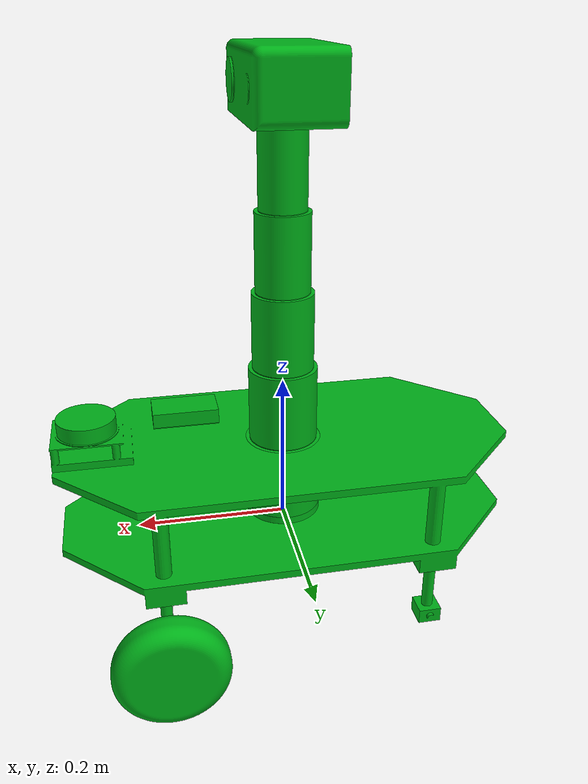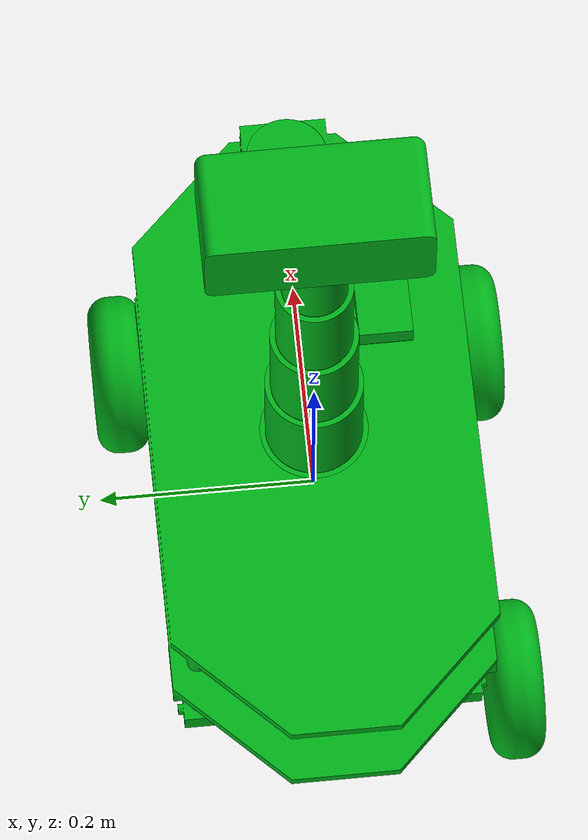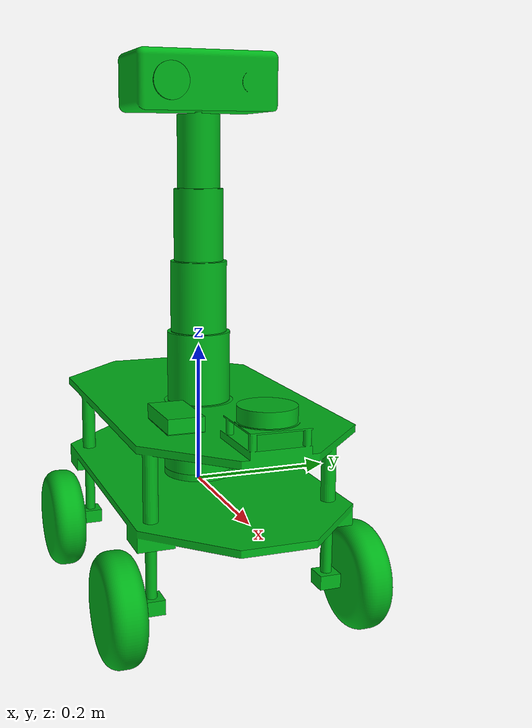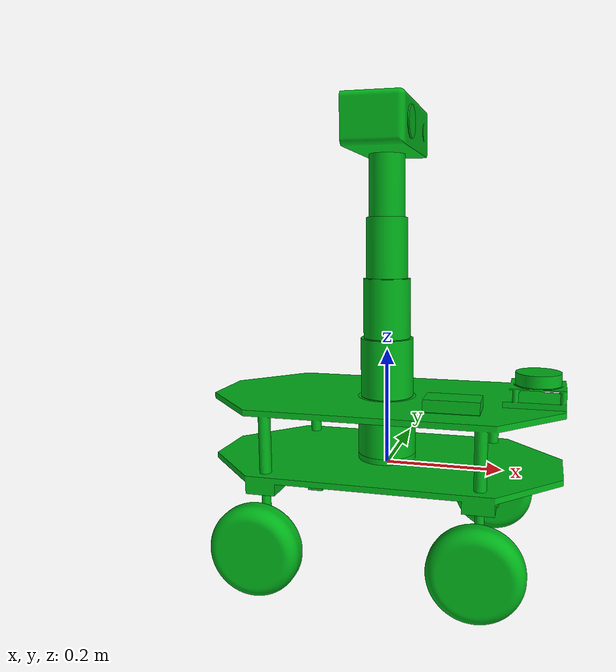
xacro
<?xml version="1.0" ?>
<robot name="mapperbot" xmlns:xacro="http://www.ros.org/wiki/xacro">

<xacro:include filename="$(find mapperbot_description)/urdf/materials.xacro" />
<xacro:include filename="$(find mapperbot_description)/urdf/mapperbot.ros2control" />
<xacro:include filename="$(find mapperbot_description)/urdf/mapperbot.gazebo" />
<link name="base_link">
  <inertial>
    <origin xyz="0.007468070541938389 -9.288922194598249e-05 0.05617291658209001" rpy="0 0 0"/>
    <mass value="5.177538235942447"/>
    <inertia ixx="0.053754" iyy="0.152647" izz="0.174457" ixy="5.7e-05" iyz="3.1e-05" ixz="-0.002879"/>
  </inertial>
  <visual>
    <origin xyz="0 0 0" rpy="0 0 0"/>
    <geometry>
      <mesh filename="file://$(find mapperbot_description)/meshes/base_link.stl" scale="0.001 0.001 0.001"/>
    </geometry>
    <material name="silver"/>
  </visual>
  <collision>
    <origin xyz="0 0 0" rpy="0 0 0"/>
    <geometry>
      <mesh filename="file://$(find mapperbot_description)/meshes/base_link.stl" scale="0.001 0.001 0.001"/>
    </geometry>
  </collision>
</link>

<link name="fl_control_arm">
  <inertial>
    <origin xyz="3.235239853793814e-11 0.0002171576276056575 -0.06510681020445454" rpy="0 0 0"/>
    <mass value="0.04509596765186873"/>
    <inertia ixx="3.7e-05" iyy="3.7e-05" izz="5e-06" ixy="-0.0" iyz="0.0" ixz="0.0"/>
  </inertial>
  <visual>
    <origin xyz="-0.175 -0.125 0.018" rpy="0 0 0"/>
    <geometry>
      <mesh filename="file://$(find mapperbot_description)/meshes/fl_control_arm_1.stl" scale="0.001 0.001 0.001"/>
    </geometry>
    <material name="silver"/>
  </visual>
  <collision>
    <origin xyz="-0.175 -0.125 0.018" rpy="0 0 0"/>
    <geometry>
      <mesh filename="file://$(find mapperbot_description)/meshes/fl_control_arm_1.stl" scale="0.001 0.001 0.001"/>
    </geometry>
  </collision>
</link>

<link name="wheel_front_left">
  <inertial>
    <origin xyz="2.60770322002557e-09 0.025000000000000022 -1.5348195908648776e-09" rpy="0 0 0"/>
    <mass value="1.1506717057432432"/>
    <inertia ixx="0.001714" iyy="0.002997" izz="0.001714" ixy="0.0" iyz="0.0" ixz="0.0"/>
  </inertial>
  <visual>
    <origin xyz="-0.175 -0.145 0.103" rpy="0 0 0"/>
    <geometry>
      <mesh filename="file://$(find mapperbot_description)/meshes/wheel_front_left_1.stl" scale="0.001 0.001 0.001"/>
    </geometry>
    <material name="silver"/>
  </visual>
  <collision>
    <origin xyz="-0.175 -0.145 0.103" rpy="0 0 0"/>
    <geometry>
      <mesh filename="file://$(find mapperbot_description)/meshes/wheel_front_left_1.stl" scale="0.001 0.001 0.001"/>
    </geometry>
  </collision>
</link>

<link name="fr_control_arm">
  <inertial>
    <origin xyz="3.235239853793814e-11 -0.0002171576276056575 -0.06510681020445454" rpy="0 0 0"/>
    <mass value="0.04509596765186873"/>
    <inertia ixx="3.7e-05" iyy="3.7e-05" izz="5e-06" ixy="0.0" iyz="-0.0" ixz="0.0"/>
  </inertial>
  <visual>
    <origin xyz="-0.175 0.125 0.018" rpy="0 0 0"/>
    <geometry>
      <mesh filename="file://$(find mapperbot_description)/meshes/fr_control_arm_1.stl" scale="0.001 0.001 0.001"/>
    </geometry>
    <material name="silver"/>
  </visual>
  <collision>
    <origin xyz="-0.175 0.125 0.018" rpy="0 0 0"/>
    <geometry>
      <mesh filename="file://$(find mapperbot_description)/meshes/fr_control_arm_1.stl" scale="0.001 0.001 0.001"/>
    </geometry>
  </collision>
</link>

<link name="wheel_front_right">
  <inertial>
    <origin xyz="2.60770322002557e-09 -0.025000000000000022 -1.5348196047426654e-09" rpy="0 0 0"/>
    <mass value="1.1506717057432432"/>
    <inertia ixx="0.001714" iyy="0.002997" izz="0.001714" ixy="0.0" iyz="-0.0" ixz="0.0"/>
  </inertial>
  <visual>
    <origin xyz="-0.175 0.145 0.103" rpy="0 0 0"/>
    <geometry>
      <mesh filename="file://$(find mapperbot_description)/meshes/wheel_front_right_1.stl" scale="0.001 0.001 0.001"/>
    </geometry>
    <material name="silver"/>
  </visual>
  <collision>
    <origin xyz="-0.175 0.145 0.103" rpy="0 0 0"/>
    <geometry>
      <mesh filename="file://$(find mapperbot_description)/meshes/wheel_front_right_1.stl" scale="0.001 0.001 0.001"/>
    </geometry>
  </collision>
</link>

<link name="br_control_arm">
  <inertial>
    <origin xyz="-3.2352648338118684e-11 -0.000217157627605713 -0.06510681020445462" rpy="0 0 0"/>
    <mass value="0.04509596765186869"/>
    <inertia ixx="3.7e-05" iyy="3.7e-05" izz="5e-06" ixy="-0.0" iyz="-0.0" ixz="-0.0"/>
  </inertial>
  <visual>
    <origin xyz="0.175 0.125 0.018" rpy="0 0 0"/>
    <geometry>
      <mesh filename="file://$(find mapperbot_description)/meshes/br_control_arm_1.stl" scale="0.001 0.001 0.001"/>
    </geometry>
    <material name="silver"/>
  </visual>
  <collision>
    <origin xyz="0.175 0.125 0.018" rpy="0 0 0"/>
    <geometry>
      <mesh filename="file://$(find mapperbot_description)/meshes/br_control_arm_1.stl" scale="0.001 0.001 0.001"/>
    </geometry>
  </collision>
</link>

<link name="wheel_back_right">
  <inertial>
    <origin xyz="-2.60770322002557e-09 -0.025000000000000022 -1.5348196047426654e-09" rpy="0 0 0"/>
    <mass value="1.1506717057432432"/>
    <inertia ixx="0.001714" iyy="0.002997" izz="0.001714" ixy="0.0" iyz="-0.0" ixz="-0.0"/>
  </inertial>
  <visual>
    <origin xyz="0.175 0.145 0.103" rpy="0 0 0"/>
    <geometry>
      <mesh filename="file://$(find mapperbot_description)/meshes/wheel_back_right_1.stl" scale="0.001 0.001 0.001"/>
    </geometry>
    <material name="silver"/>
  </visual>
  <collision>
    <origin xyz="0.175 0.145 0.103" rpy="0 0 0"/>
    <geometry>
      <mesh filename="file://$(find mapperbot_description)/meshes/wheel_back_right_1.stl" scale="0.001 0.001 0.001"/>
    </geometry>
  </collision>
</link>

<link name="bl_control_arm">
  <inertial>
    <origin xyz="-3.2352648338118684e-11 0.00021715762760574076 -0.06510681020445462" rpy="0 0 0"/>
    <mass value="0.04509596765186869"/>
    <inertia ixx="3.7e-05" iyy="3.7e-05" izz="5e-06" ixy="0.0" iyz="0.0" ixz="-0.0"/>
  </inertial>
  <visual>
    <origin xyz="0.175 -0.125 0.018" rpy="0 0 0"/>
    <geometry>
      <mesh filename="file://$(find mapperbot_description)/meshes/bl_control_arm_1.stl" scale="0.001 0.001 0.001"/>
    </geometry>
    <material name="silver"/>
  </visual>
  <collision>
    <origin xyz="0.175 -0.125 0.018" rpy="0 0 0"/>
    <geometry>
      <mesh filename="file://$(find mapperbot_description)/meshes/bl_control_arm_1.stl" scale="0.001 0.001 0.001"/>
    </geometry>
  </collision>
</link>

<link name="wheel_back_left">
  <inertial>
    <origin xyz="-2.60770322002557e-09 0.025000000000000022 -1.5348196047426654e-09" rpy="0 0 0"/>
    <mass value="1.1506717057432432"/>
    <inertia ixx="0.001714" iyy="0.002997" izz="0.001714" ixy="0.0" iyz="0.0" ixz="-0.0"/>
  </inertial>
  <visual>
    <origin xyz="0.175 -0.145 0.103" rpy="0 0 0"/>
    <geometry>
      <mesh filename="file://$(find mapperbot_description)/meshes/wheel_back_left_1.stl" scale="0.001 0.001 0.001"/>
    </geometry>
    <material name="silver"/>
  </visual>
  <collision>
    <origin xyz="0.175 -0.145 0.103" rpy="0 0 0"/>
    <geometry>
      <mesh filename="file://$(find mapperbot_description)/meshes/wheel_back_left_1.stl" scale="0.001 0.001 0.001"/>
    </geometry>
  </collision>
</link>

<link name="periscope_base">
  <inertial>
    <origin xyz="-5.7435007440948595e-18 -5.7435007440948595e-18 0.050405763317131216" rpy="0 0 0"/>
    <mass value="6.215315124889596"/>
    <inertia ixx="0.009143" iyy="0.009143" izz="0.007757" ixy="0.0" iyz="-0.0" ixz="-0.0"/>
  </inertial>
  <visual>
    <origin xyz="-0.0 -0.0 -0.02" rpy="0 0 0"/>
    <geometry>
      <mesh filename="file://$(find mapperbot_description)/meshes/periscope_base_1.stl" scale="0.001 0.001 0.001"/>
    </geometry>
    <material name="silver"/>
  </visual>
  <collision>
    <origin xyz="-0.0 -0.0 -0.02" rpy="0 0 0"/>
    <geometry>
      <mesh filename="file://$(find mapperbot_description)/meshes/periscope_base_1.stl" scale="0.001 0.001 0.001"/>
    </geometry>
  </collision>
</link>

<link name="scope_lower">
  <inertial>
    <origin xyz="7.092140005049029e-18 7.092140005049029e-18 -0.04960411562959342" rpy="0 0 0"/>
    <mass value="0.9137086613516894"/>
    <inertia ixx="0.001235" iyy="0.001235" izz="0.000924" ixy="-0.0" iyz="-0.0" ixz="-0.0"/>
  </inertial>
  <visual>
    <origin xyz="-0.0 -0.0 -0.121" rpy="0 0 0"/>
    <geometry>
      <mesh filename="file://$(find mapperbot_description)/meshes/scope_lower_1.stl" scale="0.001 0.001 0.001"/>
    </geometry>
    <material name="silver"/>
  </visual>
  <collision>
    <origin xyz="-0.0 -0.0 -0.121" rpy="0 0 0"/>
    <geometry>
      <mesh filename="file://$(find mapperbot_description)/meshes/scope_lower_1.stl" scale="0.001 0.001 0.001"/>
    </geometry>
  </collision>
</link>

<link name="scope_mid_lower">
  <inertial>
    <origin xyz="0.0 0.0 0.050383702899674386" rpy="0 0 0"/>
    <mass value="0.7217671676943958"/>
    <inertia ixx="0.000899" iyy="0.000899" izz="0.000576" ixy="0.0" iyz="-0.0" ixz="0.0"/>
  </inertial>
  <visual>
    <origin xyz="-0.0 -0.0 -0.022" rpy="0 0 0"/>
    <geometry>
      <mesh filename="file://$(find mapperbot_description)/meshes/scope_mid_lower_1.stl" scale="0.001 0.001 0.001"/>
    </geometry>
    <material name="silver"/>
  </visual>
  <collision>
    <origin xyz="-0.0 -0.0 -0.022" rpy="0 0 0"/>
    <geometry>
      <mesh filename="file://$(find mapperbot_description)/meshes/scope_mid_lower_1.stl" scale="0.001 0.001 0.001"/>
    </geometry>
  </collision>
</link>

<link name="scope_mid_upper">
  <inertial>
    <origin xyz="2.287974079576178e-14 0.0 0.15036831442463539" rpy="0 0 0"/>
    <mass value="0.5524333601704973"/>
    <inertia ixx="0.000636" iyy="0.000636" izz="0.000338" ixy="0.0" iyz="0.0" ixz="-0.0"/>
  </inertial>
  <visual>
    <origin xyz="-0.0 -0.0 0.077" rpy="0 0 0"/>
    <geometry>
      <mesh filename="file://$(find mapperbot_description)/meshes/scope_mid_upper_1.stl" scale="0.001 0.001 0.001"/>
    </geometry>
    <material name="silver"/>
  </visual>
  <collision>
    <origin xyz="-0.0 -0.0 0.077" rpy="0 0 0"/>
    <geometry>
      <mesh filename="file://$(find mapperbot_description)/meshes/scope_mid_upper_1.stl" scale="0.001 0.001 0.001"/>
    </geometry>
  </collision>
</link>

<link name="scope_upper">
  <inertial>
    <origin xyz="8.717978162132115e-16 0.0 0.2500428809325563" rpy="0 0 0"/>
    <mass value="0.40324501553774333"/>
    <inertia ixx="0.000427" iyy="0.000427" izz="0.000181" ixy="0.0" iyz="0.0" ixz="-0.0"/>
  </inertial>
  <visual>
    <origin xyz="-0.0 -0.0 0.176" rpy="0 0 0"/>
    <geometry>
      <mesh filename="file://$(find mapperbot_description)/meshes/scope_upper_1.stl" scale="0.001 0.001 0.001"/>
    </geometry>
    <material name="silver"/>
  </visual>
  <collision>
    <origin xyz="-0.0 -0.0 0.176" rpy="0 0 0"/>
    <geometry>
      <mesh filename="file://$(find mapperbot_description)/meshes/scope_upper_1.stl" scale="0.001 0.001 0.001"/>
    </geometry>
  </collision>
</link>

<link name="camera_body">
  <inertial>
    <origin xyz="-0.00013170583332755187 -4.132666024565673e-05 0.039898056224867445" rpy="0 0 0"/>
    <mass value="2.2613142078796447"/>
    <inertia ixx="0.008624" iyy="0.003065" izz="0.009312" ixy="5e-06" iyz="-0.0" ixz="1.1e-05"/>
  </inertial>
  <visual>
    <origin xyz="-0.0 -0.0 -0.127" rpy="0 0 0"/>
    <geometry>
      <mesh filename="file://$(find mapperbot_description)/meshes/camera_body_1.stl" scale="0.001 0.001 0.001"/>
    </geometry>
    <material name="silver"/>
  </visual>
  <collision>
    <origin xyz="-0.0 -0.0 -0.127" rpy="0 0 0"/>
    <geometry>
      <mesh filename="file://$(find mapperbot_description)/meshes/camera_body_1.stl" scale="0.001 0.001 0.001"/>
    </geometry>
  </collision>
</link>

<link name="camera_link">
  <inertial>
    <origin xyz="0.000999999999999994 6.938893903907228e-18 -8.326672684688674e-17" rpy="0 0 0"/>
    <mass value="0.005595961914206822"/>
    <inertia ixx="2e-06" iyy="1e-06" izz="1e-06" ixy="0.0" iyz="-0.0" ixz="-0.0"/>
  </inertial>
  <visual>
    <origin xyz="-0.051 0.055 -0.165" rpy="0 0 0"/>
    <geometry>
      <mesh filename="file://$(find mapperbot_description)/meshes/camera_link_1.stl" scale="0.001 0.001 0.001"/>
    </geometry>
    <material name="silver"/>
  </visual>
  <collision>
    <origin xyz="-0.051 0.055 -0.165" rpy="0 0 0"/>
    <geometry>
      <mesh filename="file://$(find mapperbot_description)/meshes/camera_link_1.stl" scale="0.001 0.001 0.001"/>
    </geometry>
  </collision>
</link>

<link name="mapperbot/base_link/lidar_link">
  <inertial>
    <origin xyz="-5.551115123125783e-17 0.0 0.009999999999999981" rpy="0 0 0"/>
    <mass value="0.12590914306965326"/>
    <inertia ixx="4.8e-05" iyy="4.8e-05" izz="8.9e-05" ixy="-0.0" iyz="0.0" ixz="-0.0"/>
  </inertial>
  <visual>
    <origin xyz="-0.255 -0.0 -0.153" rpy="0 0 0"/>
    <geometry>
      <mesh filename="file://$(find mapperbot_description)/meshes/lidar_link_1.stl" scale="0.001 0.001 0.001"/>
    </geometry>
    <material name="silver"/>
  </visual>
  <collision>
    <origin xyz="-0.255 -0.0 -0.153" rpy="0 0 0"/>
    <geometry>
      <mesh filename="file://$(find mapperbot_description)/meshes/lidar_link_1.stl" scale="0.001 0.001 0.001"/>
    </geometry>
  </collision>
</link>

<link name="imu_link">
  <inertial>
    <origin xyz="0.0 0.0 0.010000000000000009" rpy="0 0 0"/>
    <mass value="0.12824999999999998"/>
    <inertia ixx="3.1e-05" iyy="9.1e-05" izz="0.000113" ixy="0.0" iyz="0.0" ixz="-0.0"/>
  </inertial>
  <visual>
    <origin xyz="-0.125 0.075 -0.121" rpy="0 0 0"/>
    <geometry>
      <mesh filename="file://$(find mapperbot_description)/meshes/imu_link_1.stl" scale="0.001 0.001 0.001"/>
    </geometry>
    <material name="silver"/>
  </visual>
  <collision>
    <origin xyz="-0.125 0.075 -0.121" rpy="0 0 0"/>
    <geometry>
      <mesh filename="file://$(find mapperbot_description)/meshes/imu_link_1.stl" scale="0.001 0.001 0.001"/>
    </geometry>
  </collision>
</link>

<joint name="base_to_fl_control" type="revolute">
  <origin xyz="0.175 0.125 -0.018" rpy="0 0 0"/>
  <parent link="base_link"/>
  <child link="fl_control_arm"/>
  <axis xyz="0.0 0.0 1.0"/>
  <limit upper="0.523599" lower="-0.523599" effort="100" velocity="100"/>
</joint>

<joint name="fl_control_to_wheel" type="continuous">
  <origin xyz="0.0 0.02 -0.085" rpy="0 0 0"/>
  <parent link="fl_control_arm"/>
  <child link="wheel_front_left"/>
  <axis xyz="0.0 1.0 0.0"/>
</joint>

<joint name="base_to_fr_control" type="revolute">
  <origin xyz="0.175 -0.125 -0.018" rpy="0 0 0"/>
  <parent link="base_link"/>
  <child link="fr_control_arm"/>
  <axis xyz="0.0 0.0 1.0"/>
  <limit upper="0.523599" lower="-0.523599" effort="100" velocity="100"/>
</joint>

<joint name="fr_control_to_wheel" type="continuous">
  <origin xyz="0.0 -0.02 -0.085" rpy="0 0 0"/>
  <parent link="fr_control_arm"/>
  <child link="wheel_front_right"/>
  <axis xyz="0.0 1.0 0.0"/>
</joint>

<joint name="base_to_br_control" type="fixed">
  <origin xyz="-0.175 -0.125 -0.018" rpy="0 0 0"/>
  <parent link="base_link"/>
  <child link="br_control_arm"/>
</joint>

<joint name="br_control_to_wheel" type="continuous">
  <origin xyz="0.0 -0.02 -0.085" rpy="0 0 0"/>
  <parent link="br_control_arm"/>
  <child link="wheel_back_right"/>
  <axis xyz="0.0 1.0 0.0"/>
</joint>

<joint name="base_to_bl_control" type="fixed">
  <origin xyz="-0.175 0.125 -0.018" rpy="0 0 0"/>
  <parent link="base_link"/>
  <child link="bl_control_arm"/>
</joint>

<joint name="bl_control_to_wheel" type="continuous">
  <origin xyz="0.0 0.02 -0.085" rpy="0 0 0"/>
  <parent link="bl_control_arm"/>
  <child link="wheel_back_left"/>
  <axis xyz="0.0 1.0 0.0"/>
</joint>

<joint name="base_to_periscope_base" type="fixed">
  <origin xyz="0.0 0.0 0.02" rpy="0 0 0"/>
  <parent link="base_link"/>
  <child link="periscope_base"/>
</joint>

<joint name="scope_base_to_lower" type="prismatic">
  <origin xyz="0.0 0.0 0.101" rpy="0 0 0"/>
  <parent link="periscope_base"/>
  <child link="scope_lower"/>
  <axis xyz="0.0 0.0 1.0"/>
  <limit upper="0.0" lower="-0.1" effort="100" velocity="100"/>
</joint>

<joint name="scope_lower_to_mid_lower" type="prismatic">
  <origin xyz="0.0 0.0 -0.099" rpy="0 0 0"/>
  <parent link="scope_lower"/>
  <child link="scope_mid_lower"/>
  <axis xyz="0.0 0.0 1.0"/>
  <limit upper="0.0" lower="-0.1" effort="100" velocity="100"/>
</joint>

<joint name="scope_mid_lower_to_upper" type="prismatic">
  <origin xyz="0.0 0.0 -0.099" rpy="0 0 0"/>
  <parent link="scope_mid_lower"/>
  <child link="scope_mid_upper"/>
  <axis xyz="0.0 0.0 1.0"/>
  <limit upper="0.0" lower="-0.1" effort="100" velocity="100"/>
</joint>

<joint name="scope_mid_upper_to_upper" type="prismatic">
  <origin xyz="0.0 0.0 -0.099" rpy="0 0 0"/>
  <parent link="scope_mid_upper"/>
  <child link="scope_upper"/>
  <axis xyz="0.0 0.0 1.0"/>
  <limit upper="0.0" lower="-0.1" effort="100" velocity="100"/>
</joint>

<joint name="scope_upper_to_camera" type="continuous">
  <origin xyz="0.0 0.0 0.303" rpy="0 0 0"/>
  <parent link="scope_upper"/>
  <child link="camera_body"/>
  <axis xyz="0.0 0.0 1.0"/>
</joint>

<joint name="camera_body_to_link" type="fixed">
  <origin xyz="0.051 -0.055 0.038" rpy="0 0 0"/>
  <parent link="camera_body"/>
  <child link="camera_link"/>
</joint>

<joint name="base_to_lidar" type="fixed">
  <origin xyz="0.255 0.0 0.153" rpy="0 0 0"/>
  <parent link="base_link"/>
  <child link="mapperbot/base_link/lidar_link"/>
</joint>

<joint name="base_to_imu" type="fixed">
  <origin xyz="0.125 -0.075 0.121" rpy="0 0 0"/>
  <parent link="base_link"/>
  <child link="imu_link"/>
</joint>

</robot>

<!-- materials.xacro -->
<robot name="mapperbot" xmlns:xacro="http://www.ros.org/wiki/xacro" >

<material name="silver">
  <color rgba="0 0.700 0.100 1.000"/>
</material>

</robot>

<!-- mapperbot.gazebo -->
<robot name="mapperbot" xmlns:xacro="http://www.ros.org/wiki/xacro" >

<xacro:property name="body_color" value="Gazebo/Silver" />

<gazebo reference="base_link">
  <material>${body_color}</material>
  <mu1>0.2</mu1>
  <mu2>0.2</mu2>
  <self_collide>true</self_collide>
  <gravity>true</gravity>
</gazebo>

<gazebo reference="fl_control_arm">
  <material>${body_color}</material>
  <mu1>0.2</mu1>
  <mu2>0.2</mu2>
  <self_collide>true</self_collide>
</gazebo>

<gazebo reference="wheel_front_left">
  <material>${body_color}</material>
  <mu1>0.2</mu1>
  <mu2>0.2</mu2>
  <self_collide>true</self_collide>
</gazebo>

<gazebo reference="fr_control_arm">
  <material>${body_color}</material>
  <mu1>0.2</mu1>
  <mu2>0.2</mu2>
  <self_collide>true</self_collide>
</gazebo>

<gazebo reference="wheel_front_right">
  <material>${body_color}</material>
  <mu1>0.2</mu1>
  <mu2>0.2</mu2>
  <self_collide>true</self_collide>
</gazebo>

<gazebo reference="br_control_arm">
  <material>${body_color}</material>
  <mu1>0.2</mu1>
  <mu2>0.2</mu2>
  <self_collide>true</self_collide>
</gazebo>

<gazebo reference="wheel_back_right">
  <material>${body_color}</material>
  <mu1>0.2</mu1>
  <mu2>0.2</mu2>
  <self_collide>true</self_collide>
</gazebo>

<gazebo reference="bl_control_arm">
  <material>${body_color}</material>
  <mu1>0.2</mu1>
  <mu2>0.2</mu2>
  <self_collide>true</self_collide>
</gazebo>

<gazebo reference="wheel_back_left">
  <material>${body_color}</material>
  <mu1>0.2</mu1>
  <mu2>0.2</mu2>
  <self_collide>true</self_collide>
</gazebo>

<gazebo reference="periscope_base">
  <material>${body_color}</material>
  <mu1>0.2</mu1>
  <mu2>0.2</mu2>
  <self_collide>true</self_collide>
</gazebo>

<gazebo reference="scope_lower">
  <material>${body_color}</material>
  <mu1>0.2</mu1>
  <mu2>0.2</mu2>
  <self_collide>true</self_collide>
</gazebo>

<gazebo reference="scope_mid_lower">
  <material>${body_color}</material>
  <mu1>0.2</mu1>
  <mu2>0.2</mu2>
  <self_collide>true</self_collide>
</gazebo>

<gazebo reference="scope_mid_upper">
  <material>${body_color}</material>
  <mu1>0.2</mu1>
  <mu2>0.2</mu2>
  <self_collide>true</self_collide>
</gazebo>

<gazebo reference="scope_upper">
  <material>${body_color}</material>
  <mu1>0.2</mu1>
  <mu2>0.2</mu2>
  <self_collide>true</self_collide>
</gazebo>

<gazebo reference="camera_body">
  <material>${body_color}</material>
  <mu1>0.2</mu1>
  <mu2>0.2</mu2>
  <self_collide>true</self_collide>
</gazebo>

<gazebo reference="camera_link">
  <material>${body_color}</material>
  <mu1>0.2</mu1>
  <mu2>0.2</mu2>
  <self_collide>true</self_collide>
</gazebo>

<gazebo reference="lidar_link">
  <material>${body_color}</material>
  <mu1>0.2</mu1>
  <mu2>0.2</mu2>
  <self_collide>true</self_collide>
</gazebo>

<gazebo reference="imu_link">
  <material>${body_color}</material>
  <mu1>0.2</mu1>
  <mu2>0.2</mu2>
  <self_collide>true</self_collide>
</gazebo>

<!-- SENSORS SYSTEM PLUGIN -->
<gazebo>
<plugin filename="gz-sim-sensors-system" name="gz::sim::systems::Sensors">
<render_engine>ogre2</render_engine>
</plugin>
</gazebo>

<!-- LIDAR Sensor Setup-->
<gazebo reference="mapperbot/base_link/lidar_link">
<sensor name="lidar_link" type="gpu_lidar">
  <always_on>1</always_on>
  <visualize>1</visualize>
  <topic>lidar</topic>
  <pose relative_to="base_link">0.255 0 0.153 0 0 0</pose>
  <update_rate>10</update_rate>
  <lidar>
    <scan>
      <horizontal>
        <samples>640</samples>
        <resolution>1</resolution>
        <min_angle>-2.35619449</min_angle>
        <max_angle>2.35619449</max_angle>
      </horizontal>
      <vertical>
        <samples>640</samples>
        <resolution>1</resolution>
        <min_angle>-0.174532925</min_angle>
        <max_angle>0.523599</max_angle>
        </vertical>
    </scan>
    <range>
      <min>0.1</min>
      <max>20.0</max>
      <resolution>0.01</resolution>
    </range>
  </lidar>
</sensor>
</gazebo>

<!-- Camera Sensor-->
<gazebo reference="camera_link">
  <sensor name="mapperbot_camera" type="camera">
    <always_on>true</always_on>
    <update_rate>30</update_rate>
    <topic>mapperbot/camera</topic>
    <pose relative_to="base_link">0.051 -0.055 0.66 0 0 0</pose>
    <camera>
      <horizontal_fov>1.047</horizontal_fov>
      <image>
        <width>640</width>
        <height>480</height>
        <format>R8G8B8</format>
      </image>
      <clip>
        <near>0.05</near>
        <far>50.0</far>
      </clip>
    </camera>
    <visualize>true</visualize>
  </sensor>
</gazebo>

<gazebo>
  <plugin filename="gz-sim-imu-system" name="gz::sim::systems::Imu"/>
</gazebo>
<!-- IMU Sensor -->
<gazebo reference="imu_link">
  <sensor name="mapperbot_imu" type="imu">
    <always_on>true</always_on>
    <update_rate>100</update_rate>
    <topic>imu</topic>
    <pose relative_to="base_link">0.125 -0.075 0.121 0 0 0</pose>
    <gz_frame_id>imu_link</gz_frame_id>
    <imu>
      <angular_velocity>
        <x>
          <noise type="gaussian">
            <mean>0.0</mean>
            <stddev>0.0002</stddev>
          </noise>
        </x>
        <y>
          <noise type="gaussian">
            <mean>0.0</mean>
            <stddev>0.0002</stddev>
          </noise>
        </y>
        <z>
          <noise type="gaussian">
            <mean>0.0</mean>
            <stddev>0.0002</stddev>
          </noise>
        </z>
      </angular_velocity>
      <linear_acceleration>
        <x>
          <noise type="gaussian">
            <mean>0.0</mean>
            <stddev>0.017</stddev>
          </noise>
        </x>
        <y>
          <noise type="gaussian">
            <mean>0.0</mean>
            <stddev>0.017</stddev>
          </noise>
        </y>
        <z>
          <noise type="gaussian">
            <mean>0.0</mean>
            <stddev>0.017</stddev>
          </noise>
        </z>
      </linear_acceleration>
    </imu>
  </sensor>
</gazebo>

<gazebo>
<plugin name="gz_ros2_control::GazeboSimROS2ControlPlugin" filename="libgz_ros2_control-system.so">
<parameters>
$(find mapperbot_description)/config/controller_config.yaml
</parameters>
</plugin>
</gazebo>

</robot>
